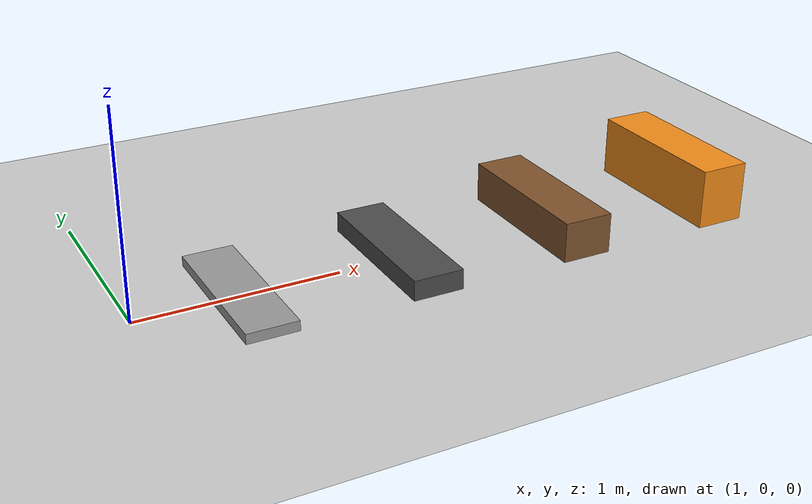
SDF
<?xml version="1.0" ?>
<!-- 由 omni_world.py 自动生成: scene=boxes seed=1 -->
<sdf version="1.5">
  <world name="boxes">
    <physics type="ode">
      <type>world</type>
      <max_step_size>0.001</max_step_size>
      <real_time_update_rate>1000</real_time_update_rate>
      <iters>500</iters>
    </physics>
    <include><uri>model://sun</uri></include>
    <include><uri>model://ground_plane</uri></include>
    <model name="box_0">
      <static>true</static>
      <pose>1.500 0.000 0.025 0.0000 0.0000 0.0000</pose>
      <link name="link">
        <collision name="collision">
          <geometry><box><size>0.250 0.800 0.050</size></box></geometry>
          <surface><friction><ode><mu>1.0</mu><mu2>1.0</mu2></ode></friction></surface>
        </collision>
        <visual name="visual">
          <geometry><box><size>0.250 0.800 0.050</size></box></geometry>
          <material><script><uri>file://media/materials/scripts/gazebo.material</uri>
            <name>Gazebo/Grey</name></script></material>
        </visual>
      </link>
    </model>
    <model name="box_1">
      <static>true</static>
      <pose>2.300 0.000 0.050 0.0000 0.0000 0.0000</pose>
      <link name="link">
        <collision name="collision">
          <geometry><box><size>0.250 0.800 0.100</size></box></geometry>
          <surface><friction><ode><mu>1.0</mu><mu2>1.0</mu2></ode></friction></surface>
        </collision>
        <visual name="visual">
          <geometry><box><size>0.250 0.800 0.100</size></box></geometry>
          <material><script><uri>file://media/materials/scripts/gazebo.material</uri>
            <name>Gazebo/DarkGrey</name></script></material>
        </visual>
      </link>
    </model>
    <model name="box_2">
      <static>true</static>
      <pose>3.100 0.000 0.100 0.0000 0.0000 0.0000</pose>
      <link name="link">
        <collision name="collision">
          <geometry><box><size>0.250 0.800 0.200</size></box></geometry>
          <surface><friction><ode><mu>1.0</mu><mu2>1.0</mu2></ode></friction></surface>
        </collision>
        <visual name="visual">
          <geometry><box><size>0.250 0.800 0.200</size></box></geometry>
          <material><script><uri>file://media/materials/scripts/gazebo.material</uri>
            <name>Gazebo/Brown</name></script></material>
        </visual>
      </link>
    </model>
    <model name="box_3">
      <static>true</static>
      <pose>3.900 0.000 0.150 0.0000 0.0000 0.0000</pose>
      <link name="link">
        <collision name="collision">
          <geometry><box><size>0.250 0.800 0.300</size></box></geometry>
          <surface><friction><ode><mu>1.0</mu><mu2>1.0</mu2></ode></friction></surface>
        </collision>
        <visual name="visual">
          <geometry><box><size>0.250 0.800 0.300</size></box></geometry>
          <material><script><uri>file://media/materials/scripts/gazebo.material</uri>
            <name>Gazebo/Orange</name></script></material>
        </visual>
      </link>
    </model>

  </world>
</sdf>
